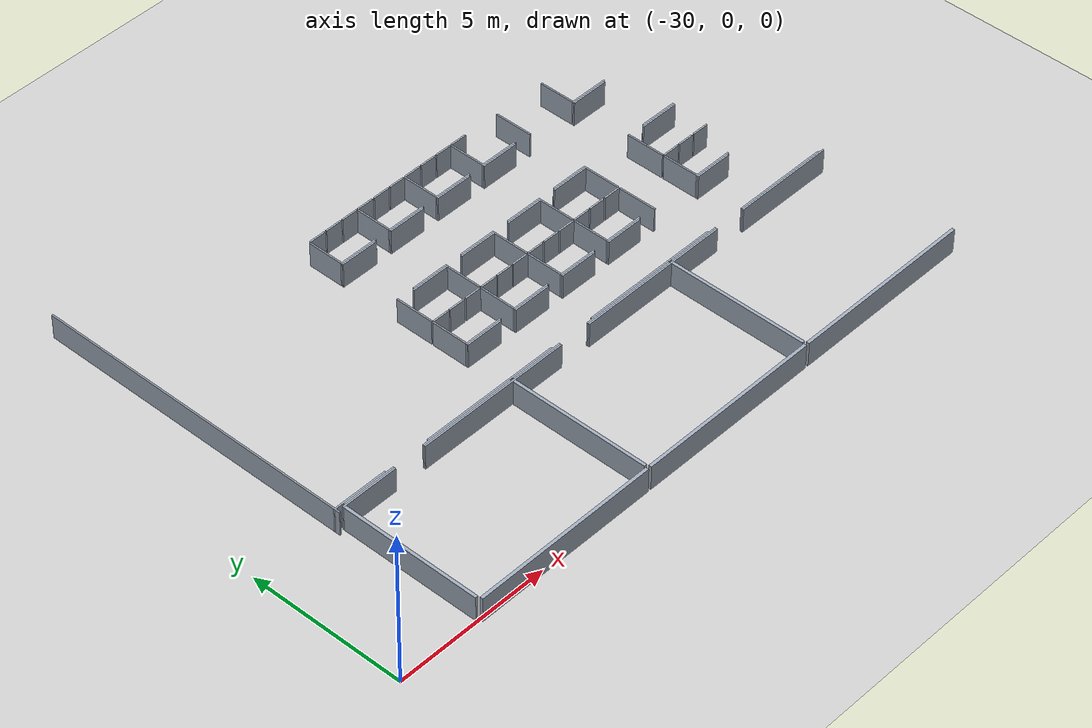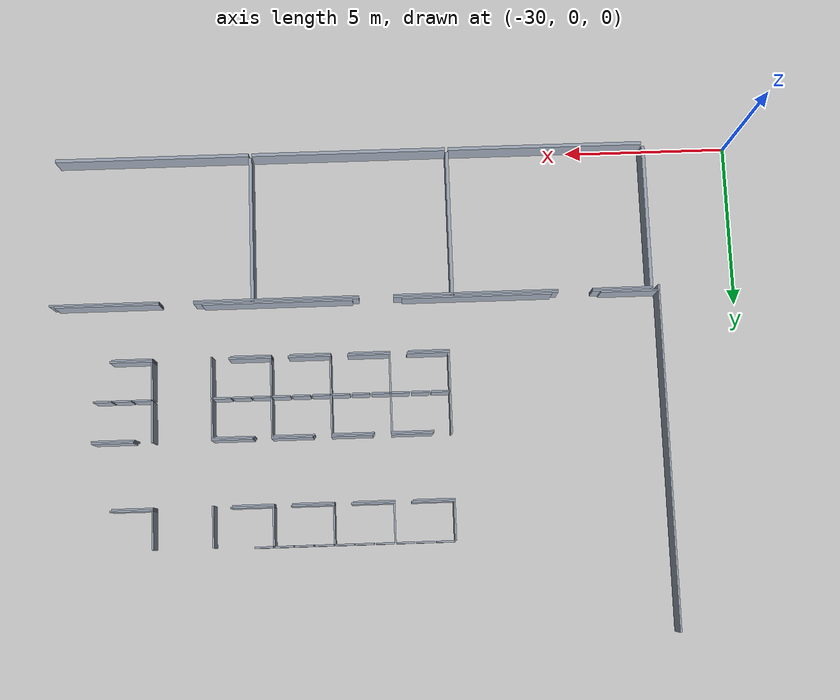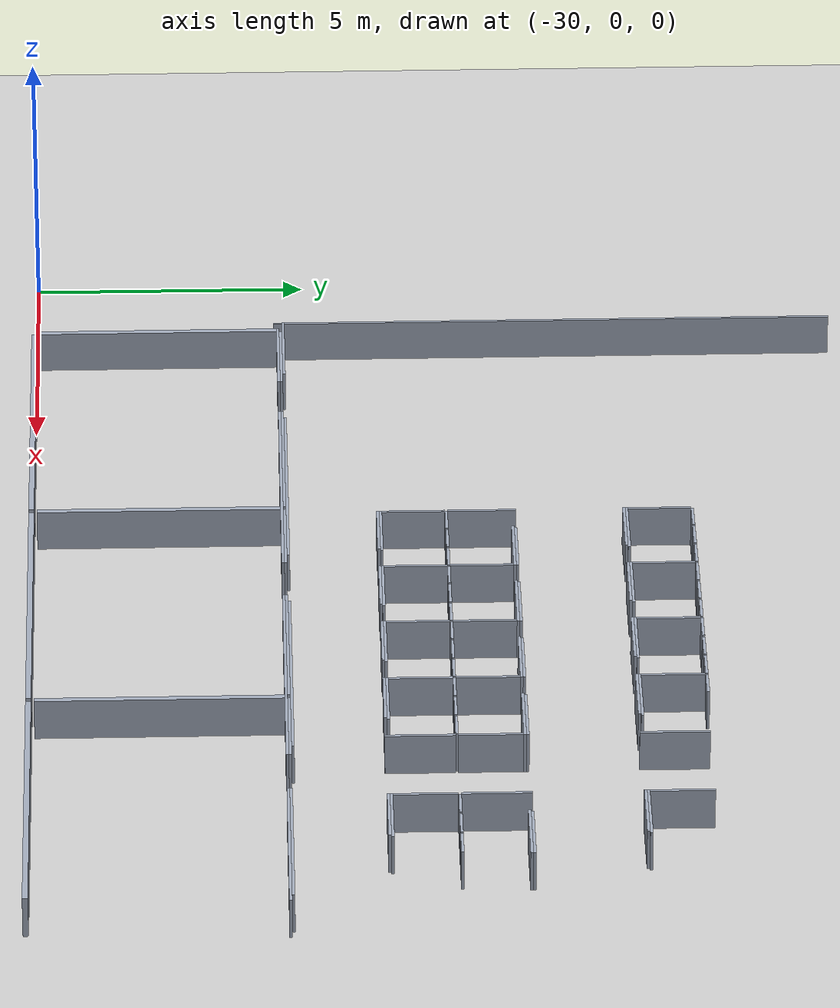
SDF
<sdf version="1.6">
 <world name="default">
  <include><uri>model://ground_plane</uri></include>
  <include><uri>model://sun</uri></include>
  <model name="slam_office_obstacles">
   <static>true</static>
   <link name="wall_175">
    <pose>-20.7250 12.0250 0.4 0 0 0</pose>
    <collision name="collision"><geometry><box><size>0.5500 0.0500 0.8</size></box></geometry></collision>
    <visual name="visual">
     <geometry><box><size>0.5500 0.0500 0.8</size></box></geometry>
     <material><ambient>0.62 0.66 0.72 1</ambient><diffuse>0.62 0.66 0.72 1</diffuse></material>
    </visual>
   </link>
   <link name="wall_176">
    <pose>-20.1250 12.0250 0.4 0 0 0</pose>
    <collision name="collision"><geometry><box><size>0.5500 0.0500 0.8</size></box></geometry></collision>
    <visual name="visual">
     <geometry><box><size>0.5500 0.0500 0.8</size></box></geometry>
     <material><ambient>0.62 0.66 0.72 1</ambient><diffuse>0.62 0.66 0.72 1</diffuse></material>
    </visual>
   </link>
   <link name="wall_177">
    <pose>-19.5250 12.0250 0.4 0 0 0</pose>
    <collision name="collision"><geometry><box><size>0.5500 0.0500 0.8</size></box></geometry></collision>
    <visual name="visual">
     <geometry><box><size>0.5500 0.0500 0.8</size></box></geometry>
     <material><ambient>0.62 0.66 0.72 1</ambient><diffuse>0.62 0.66 0.72 1</diffuse></material>
    </visual>
   </link>
   <link name="wall_178">
    <pose>-18.9250 12.0250 0.4 0 0 0</pose>
    <collision name="collision"><geometry><box><size>0.5500 0.0500 0.8</size></box></geometry></collision>
    <visual name="visual">
     <geometry><box><size>0.5500 0.0500 0.8</size></box></geometry>
     <material><ambient>0.62 0.66 0.72 1</ambient><diffuse>0.62 0.66 0.72 1</diffuse></material>
    </visual>
   </link>
   <link name="wall_179">
    <pose>-18.3250 12.0250 0.4 0 0 0</pose>
    <collision name="collision"><geometry><box><size>0.5500 0.0500 0.8</size></box></geometry></collision>
    <visual name="visual">
     <geometry><box><size>0.5500 0.0500 0.8</size></box></geometry>
     <material><ambient>0.62 0.66 0.72 1</ambient><diffuse>0.62 0.66 0.72 1</diffuse></material>
    </visual>
   </link>
   <link name="wall_180">
    <pose>-17.7250 12.0250 0.4 0 0 0</pose>
    <collision name="collision"><geometry><box><size>0.5500 0.0500 0.8</size></box></geometry></collision>
    <visual name="visual">
     <geometry><box><size>0.5500 0.0500 0.8</size></box></geometry>
     <material><ambient>0.62 0.66 0.72 1</ambient><diffuse>0.62 0.66 0.72 1</diffuse></material>
    </visual>
   </link>
   <link name="wall_181">
    <pose>-17.1250 12.0250 0.4 0 0 0</pose>
    <collision name="collision"><geometry><box><size>0.5500 0.0500 0.8</size></box></geometry></collision>
    <visual name="visual">
     <geometry><box><size>0.5500 0.0500 0.8</size></box></geometry>
     <material><ambient>0.62 0.66 0.72 1</ambient><diffuse>0.62 0.66 0.72 1</diffuse></material>
    </visual>
   </link>
   <link name="wall_182">
    <pose>-16.5250 12.0250 0.4 0 0 0</pose>
    <collision name="collision"><geometry><box><size>0.5500 0.0500 0.8</size></box></geometry></collision>
    <visual name="visual">
     <geometry><box><size>0.5500 0.0500 0.8</size></box></geometry>
     <material><ambient>0.62 0.66 0.72 1</ambient><diffuse>0.62 0.66 0.72 1</diffuse></material>
    </visual>
   </link>
   <link name="wall_183">
    <pose>-15.9250 12.0250 0.4 0 0 0</pose>
    <collision name="collision"><geometry><box><size>0.5500 0.0500 0.8</size></box></geometry></collision>
    <visual name="visual">
     <geometry><box><size>0.5500 0.0500 0.8</size></box></geometry>
     <material><ambient>0.62 0.66 0.72 1</ambient><diffuse>0.62 0.66 0.72 1</diffuse></material>
    </visual>
   </link>
   <link name="wall_184">
    <pose>-15.3250 12.0250 0.4 0 0 0</pose>
    <collision name="collision"><geometry><box><size>0.5500 0.0500 0.8</size></box></geometry></collision>
    <visual name="visual">
     <geometry><box><size>0.5500 0.0500 0.8</size></box></geometry>
     <material><ambient>0.62 0.66 0.72 1</ambient><diffuse>0.62 0.66 0.72 1</diffuse></material>
    </visual>
   </link>
   <link name="wall_207">
    <pose>-21.0250 11.4250 0.4 0 0 0</pose>
    <collision name="collision"><geometry><box><size>0.0500 1.1500 0.8</size></box></geometry></collision>
    <visual name="visual">
     <geometry><box><size>0.0500 1.1500 0.8</size></box></geometry>
     <material><ambient>0.62 0.66 0.72 1</ambient><diffuse>0.62 0.66 0.72 1</diffuse></material>
    </visual>
   </link>
   <link name="wall_208">
    <pose>-19.2250 11.4250 0.4 0 0 0</pose>
    <collision name="collision"><geometry><box><size>0.0500 1.1500 0.8</size></box></geometry></collision>
    <visual name="visual">
     <geometry><box><size>0.0500 1.1500 0.8</size></box></geometry>
     <material><ambient>0.62 0.66 0.72 1</ambient><diffuse>0.62 0.66 0.72 1</diffuse></material>
    </visual>
   </link>
   <link name="wall_209">
    <pose>-17.4250 11.4250 0.4 0 0 0</pose>
    <collision name="collision"><geometry><box><size>0.0500 1.1500 0.8</size></box></geometry></collision>
    <visual name="visual">
     <geometry><box><size>0.0500 1.1500 0.8</size></box></geometry>
     <material><ambient>0.62 0.66 0.72 1</ambient><diffuse>0.62 0.66 0.72 1</diffuse></material>
    </visual>
   </link>
   <link name="wall_210">
    <pose>-15.6250 11.4250 0.4 0 0 0</pose>
    <collision name="collision"><geometry><box><size>0.0500 1.1500 0.8</size></box></geometry></collision>
    <visual name="visual">
     <geometry><box><size>0.0500 1.1500 0.8</size></box></geometry>
     <material><ambient>0.62 0.66 0.72 1</ambient><diffuse>0.62 0.66 0.72 1</diffuse></material>
    </visual>
   </link>
   <link name="wall_211">
    <pose>-12.0250 11.4250 0.4 0 0 0</pose>
    <collision name="collision"><geometry><box><size>0.0500 1.1500 0.8</size></box></geometry></collision>
    <visual name="visual">
     <geometry><box><size>0.0500 1.1500 0.8</size></box></geometry>
     <material><ambient>0.62 0.66 0.72 1</ambient><diffuse>0.62 0.66 0.72 1</diffuse></material>
    </visual>
   </link>
   <link name="wall_214">
    <pose>-20.4000 10.8250 0.4 0 0 0</pose>
    <collision name="collision"><geometry><box><size>1.3000 0.0500 0.8</size></box></geometry></collision>
    <visual name="visual">
     <geometry><box><size>1.3000 0.0500 0.8</size></box></geometry>
     <material><ambient>0.62 0.66 0.72 1</ambient><diffuse>0.62 0.66 0.72 1</diffuse></material>
    </visual>
   </link>
   <link name="wall_215">
    <pose>-18.6000 10.8250 0.4 0 0 0</pose>
    <collision name="collision"><geometry><box><size>1.3000 0.0500 0.8</size></box></geometry></collision>
    <visual name="visual">
     <geometry><box><size>1.3000 0.0500 0.8</size></box></geometry>
     <material><ambient>0.62 0.66 0.72 1</ambient><diffuse>0.62 0.66 0.72 1</diffuse></material>
    </visual>
   </link>
   <link name="wall_216">
    <pose>-16.8000 10.8250 0.4 0 0 0</pose>
    <collision name="collision"><geometry><box><size>1.3000 0.0500 0.8</size></box></geometry></collision>
    <visual name="visual">
     <geometry><box><size>1.3000 0.0500 0.8</size></box></geometry>
     <material><ambient>0.62 0.66 0.72 1</ambient><diffuse>0.62 0.66 0.72 1</diffuse></material>
    </visual>
   </link>
   <link name="wall_217">
    <pose>-15.0000 10.8250 0.4 0 0 0</pose>
    <collision name="collision"><geometry><box><size>1.3000 0.0500 0.8</size></box></geometry></collision>
    <visual name="visual">
     <geometry><box><size>1.3000 0.0500 0.8</size></box></geometry>
     <material><ambient>0.62 0.66 0.72 1</ambient><diffuse>0.62 0.66 0.72 1</diffuse></material>
    </visual>
   </link>
   <link name="wall_218">
    <pose>-11.4000 10.8250 0.4 0 0 0</pose>
    <collision name="collision"><geometry><box><size>1.3000 0.0500 0.8</size></box></geometry></collision>
    <visual name="visual">
     <geometry><box><size>1.3000 0.0500 0.8</size></box></geometry>
     <material><ambient>0.62 0.66 0.72 1</ambient><diffuse>0.62 0.66 0.72 1</diffuse></material>
    </visual>
   </link>
   <link name="wall_221">
    <pose>-13.8250 11.3750 0.4 0 0 0</pose>
    <collision name="collision"><geometry><box><size>0.0500 1.2500 0.8</size></box></geometry></collision>
    <visual name="visual">
     <geometry><box><size>0.0500 1.2500 0.8</size></box></geometry>
     <material><ambient>0.62 0.66 0.72 1</ambient><diffuse>0.62 0.66 0.72 1</diffuse></material>
    </visual>
   </link>
   <link name="wall_223">
    <pose>-20.4250 10.7750 0.4 0 0 0</pose>
    <collision name="collision"><geometry><box><size>1.2500 0.0500 0.8</size></box></geometry></collision>
    <visual name="visual">
     <geometry><box><size>1.2500 0.0500 0.8</size></box></geometry>
     <material><ambient>0.62 0.66 0.72 1</ambient><diffuse>0.62 0.66 0.72 1</diffuse></material>
    </visual>
   </link>
   <link name="wall_224">
    <pose>-18.6250 10.7750 0.4 0 0 0</pose>
    <collision name="collision"><geometry><box><size>1.2500 0.0500 0.8</size></box></geometry></collision>
    <visual name="visual">
     <geometry><box><size>1.2500 0.0500 0.8</size></box></geometry>
     <material><ambient>0.62 0.66 0.72 1</ambient><diffuse>0.62 0.66 0.72 1</diffuse></material>
    </visual>
   </link>
   <link name="wall_225">
    <pose>-16.8250 10.7750 0.4 0 0 0</pose>
    <collision name="collision"><geometry><box><size>1.2500 0.0500 0.8</size></box></geometry></collision>
    <visual name="visual">
     <geometry><box><size>1.2500 0.0500 0.8</size></box></geometry>
     <material><ambient>0.62 0.66 0.72 1</ambient><diffuse>0.62 0.66 0.72 1</diffuse></material>
    </visual>
   </link>
   <link name="wall_226">
    <pose>-15.0250 10.7750 0.4 0 0 0</pose>
    <collision name="collision"><geometry><box><size>1.2500 0.0500 0.8</size></box></geometry></collision>
    <visual name="visual">
     <geometry><box><size>1.2500 0.0500 0.8</size></box></geometry>
     <material><ambient>0.62 0.66 0.72 1</ambient><diffuse>0.62 0.66 0.72 1</diffuse></material>
    </visual>
   </link>
   <link name="wall_227">
    <pose>-11.4250 10.7750 0.4 0 0 0</pose>
    <collision name="collision"><geometry><box><size>1.2500 0.0500 0.8</size></box></geometry></collision>
    <visual name="visual">
     <geometry><box><size>1.2500 0.0500 0.8</size></box></geometry>
     <material><ambient>0.62 0.66 0.72 1</ambient><diffuse>0.62 0.66 0.72 1</diffuse></material>
    </visual>
   </link>
   <link name="wall_243">
    <pose>-19.8250 8.7750 0.4 0 0 0</pose>
    <collision name="collision"><geometry><box><size>1.2500 0.0500 0.8</size></box></geometry></collision>
    <visual name="visual">
     <geometry><box><size>1.2500 0.0500 0.8</size></box></geometry>
     <material><ambient>0.62 0.66 0.72 1</ambient><diffuse>0.62 0.66 0.72 1</diffuse></material>
    </visual>
   </link>
   <link name="wall_244">
    <pose>-18.0250 8.7750 0.4 0 0 0</pose>
    <collision name="collision"><geometry><box><size>1.2500 0.0500 0.8</size></box></geometry></collision>
    <visual name="visual">
     <geometry><box><size>1.2500 0.0500 0.8</size></box></geometry>
     <material><ambient>0.62 0.66 0.72 1</ambient><diffuse>0.62 0.66 0.72 1</diffuse></material>
    </visual>
   </link>
   <link name="wall_245">
    <pose>-16.2250 8.7750 0.4 0 0 0</pose>
    <collision name="collision"><geometry><box><size>1.2500 0.0500 0.8</size></box></geometry></collision>
    <visual name="visual">
     <geometry><box><size>1.2500 0.0500 0.8</size></box></geometry>
     <material><ambient>0.62 0.66 0.72 1</ambient><diffuse>0.62 0.66 0.72 1</diffuse></material>
    </visual>
   </link>
   <link name="wall_246">
    <pose>-14.4250 8.7750 0.4 0 0 0</pose>
    <collision name="collision"><geometry><box><size>1.2500 0.0500 0.8</size></box></geometry></collision>
    <visual name="visual">
     <geometry><box><size>1.2500 0.0500 0.8</size></box></geometry>
     <material><ambient>0.62 0.66 0.72 1</ambient><diffuse>0.62 0.66 0.72 1</diffuse></material>
    </visual>
   </link>
   <link name="wall_247">
    <pose>-10.8250 8.7750 0.4 0 0 0</pose>
    <collision name="collision"><geometry><box><size>1.2500 0.0500 0.8</size></box></geometry></collision>
    <visual name="visual">
     <geometry><box><size>1.2500 0.0500 0.8</size></box></geometry>
     <material><ambient>0.62 0.66 0.72 1</ambient><diffuse>0.62 0.66 0.72 1</diffuse></material>
    </visual>
   </link>
   <link name="wall_250">
    <pose>-19.8500 8.7250 0.4 0 0 0</pose>
    <collision name="collision"><geometry><box><size>1.3000 0.0500 0.8</size></box></geometry></collision>
    <visual name="visual">
     <geometry><box><size>1.3000 0.0500 0.8</size></box></geometry>
     <material><ambient>0.62 0.66 0.72 1</ambient><diffuse>0.62 0.66 0.72 1</diffuse></material>
    </visual>
   </link>
   <link name="wall_251">
    <pose>-18.0500 8.7250 0.4 0 0 0</pose>
    <collision name="collision"><geometry><box><size>1.3000 0.0500 0.8</size></box></geometry></collision>
    <visual name="visual">
     <geometry><box><size>1.3000 0.0500 0.8</size></box></geometry>
     <material><ambient>0.62 0.66 0.72 1</ambient><diffuse>0.62 0.66 0.72 1</diffuse></material>
    </visual>
   </link>
   <link name="wall_252">
    <pose>-16.2500 8.7250 0.4 0 0 0</pose>
    <collision name="collision"><geometry><box><size>1.3000 0.0500 0.8</size></box></geometry></collision>
    <visual name="visual">
     <geometry><box><size>1.3000 0.0500 0.8</size></box></geometry>
     <material><ambient>0.62 0.66 0.72 1</ambient><diffuse>0.62 0.66 0.72 1</diffuse></material>
    </visual>
   </link>
   <link name="wall_253">
    <pose>-14.4500 8.7250 0.4 0 0 0</pose>
    <collision name="collision"><geometry><box><size>1.3000 0.0500 0.8</size></box></geometry></collision>
    <visual name="visual">
     <geometry><box><size>1.3000 0.0500 0.8</size></box></geometry>
     <material><ambient>0.62 0.66 0.72 1</ambient><diffuse>0.62 0.66 0.72 1</diffuse></material>
    </visual>
   </link>
   <link name="wall_254">
    <pose>-10.8500 8.7250 0.4 0 0 0</pose>
    <collision name="collision"><geometry><box><size>1.3000 0.0500 0.8</size></box></geometry></collision>
    <visual name="visual">
     <geometry><box><size>1.3000 0.0500 0.8</size></box></geometry>
     <material><ambient>0.62 0.66 0.72 1</ambient><diffuse>0.62 0.66 0.72 1</diffuse></material>
    </visual>
   </link>
   <link name="wall_259">
    <pose>-21.0250 8.1750 0.4 0 0 0</pose>
    <collision name="collision"><geometry><box><size>0.0500 1.2500 0.8</size></box></geometry></collision>
    <visual name="visual">
     <geometry><box><size>0.0500 1.2500 0.8</size></box></geometry>
     <material><ambient>0.62 0.66 0.72 1</ambient><diffuse>0.62 0.66 0.72 1</diffuse></material>
    </visual>
   </link>
   <link name="wall_260">
    <pose>-12.0250 8.1750 0.4 0 0 0</pose>
    <collision name="collision"><geometry><box><size>0.0500 1.2500 0.8</size></box></geometry></collision>
    <visual name="visual">
     <geometry><box><size>0.0500 1.2500 0.8</size></box></geometry>
     <material><ambient>0.62 0.66 0.72 1</ambient><diffuse>0.62 0.66 0.72 1</diffuse></material>
    </visual>
   </link>
   <link name="wall_261">
    <pose>-19.2250 8.1250 0.4 0 0 0</pose>
    <collision name="collision"><geometry><box><size>0.0500 1.1500 0.8</size></box></geometry></collision>
    <visual name="visual">
     <geometry><box><size>0.0500 1.1500 0.8</size></box></geometry>
     <material><ambient>0.62 0.66 0.72 1</ambient><diffuse>0.62 0.66 0.72 1</diffuse></material>
    </visual>
   </link>
   <link name="wall_262">
    <pose>-17.4250 8.1250 0.4 0 0 0</pose>
    <collision name="collision"><geometry><box><size>0.0500 1.1500 0.8</size></box></geometry></collision>
    <visual name="visual">
     <geometry><box><size>0.0500 1.1500 0.8</size></box></geometry>
     <material><ambient>0.62 0.66 0.72 1</ambient><diffuse>0.62 0.66 0.72 1</diffuse></material>
    </visual>
   </link>
   <link name="wall_263">
    <pose>-15.6250 8.1250 0.4 0 0 0</pose>
    <collision name="collision"><geometry><box><size>0.0500 1.1500 0.8</size></box></geometry></collision>
    <visual name="visual">
     <geometry><box><size>0.0500 1.1500 0.8</size></box></geometry>
     <material><ambient>0.62 0.66 0.72 1</ambient><diffuse>0.62 0.66 0.72 1</diffuse></material>
    </visual>
   </link>
   <link name="wall_264">
    <pose>-13.8250 8.1250 0.4 0 0 0</pose>
    <collision name="collision"><geometry><box><size>0.0500 1.1500 0.8</size></box></geometry></collision>
    <visual name="visual">
     <geometry><box><size>0.0500 1.1500 0.8</size></box></geometry>
     <material><ambient>0.62 0.66 0.72 1</ambient><diffuse>0.62 0.66 0.72 1</diffuse></material>
    </visual>
   </link>
   <link name="wall_270">
    <pose>-20.7250 7.5250 0.4 0 0 0</pose>
    <collision name="collision"><geometry><box><size>0.5500 0.0500 0.8</size></box></geometry></collision>
    <visual name="visual">
     <geometry><box><size>0.5500 0.0500 0.8</size></box></geometry>
     <material><ambient>0.62 0.66 0.72 1</ambient><diffuse>0.62 0.66 0.72 1</diffuse></material>
    </visual>
   </link>
   <link name="wall_271">
    <pose>-20.1250 7.5250 0.4 0 0 0</pose>
    <collision name="collision"><geometry><box><size>0.5500 0.0500 0.8</size></box></geometry></collision>
    <visual name="visual">
     <geometry><box><size>0.5500 0.0500 0.8</size></box></geometry>
     <material><ambient>0.62 0.66 0.72 1</ambient><diffuse>0.62 0.66 0.72 1</diffuse></material>
    </visual>
   </link>
   <link name="wall_272">
    <pose>-19.5250 7.5250 0.4 0 0 0</pose>
    <collision name="collision"><geometry><box><size>0.5500 0.0500 0.8</size></box></geometry></collision>
    <visual name="visual">
     <geometry><box><size>0.5500 0.0500 0.8</size></box></geometry>
     <material><ambient>0.62 0.66 0.72 1</ambient><diffuse>0.62 0.66 0.72 1</diffuse></material>
    </visual>
   </link>
   <link name="wall_273">
    <pose>-18.9250 7.5250 0.4 0 0 0</pose>
    <collision name="collision"><geometry><box><size>0.5500 0.0500 0.8</size></box></geometry></collision>
    <visual name="visual">
     <geometry><box><size>0.5500 0.0500 0.8</size></box></geometry>
     <material><ambient>0.62 0.66 0.72 1</ambient><diffuse>0.62 0.66 0.72 1</diffuse></material>
    </visual>
   </link>
   <link name="wall_274">
    <pose>-18.3250 7.5250 0.4 0 0 0</pose>
    <collision name="collision"><geometry><box><size>0.5500 0.0500 0.8</size></box></geometry></collision>
    <visual name="visual">
     <geometry><box><size>0.5500 0.0500 0.8</size></box></geometry>
     <material><ambient>0.62 0.66 0.72 1</ambient><diffuse>0.62 0.66 0.72 1</diffuse></material>
    </visual>
   </link>
   <link name="wall_275">
    <pose>-17.7250 7.5250 0.4 0 0 0</pose>
    <collision name="collision"><geometry><box><size>0.5500 0.0500 0.8</size></box></geometry></collision>
    <visual name="visual">
     <geometry><box><size>0.5500 0.0500 0.8</size></box></geometry>
     <material><ambient>0.62 0.66 0.72 1</ambient><diffuse>0.62 0.66 0.72 1</diffuse></material>
    </visual>
   </link>
   <link name="wall_276">
    <pose>-17.1250 7.5250 0.4 0 0 0</pose>
    <collision name="collision"><geometry><box><size>0.5500 0.0500 0.8</size></box></geometry></collision>
    <visual name="visual">
     <geometry><box><size>0.5500 0.0500 0.8</size></box></geometry>
     <material><ambient>0.62 0.66 0.72 1</ambient><diffuse>0.62 0.66 0.72 1</diffuse></material>
    </visual>
   </link>
   <link name="wall_277">
    <pose>-16.5250 7.5250 0.4 0 0 0</pose>
    <collision name="collision"><geometry><box><size>0.5500 0.0500 0.8</size></box></geometry></collision>
    <visual name="visual">
     <geometry><box><size>0.5500 0.0500 0.8</size></box></geometry>
     <material><ambient>0.62 0.66 0.72 1</ambient><diffuse>0.62 0.66 0.72 1</diffuse></material>
    </visual>
   </link>
   <link name="wall_278">
    <pose>-15.9250 7.5250 0.4 0 0 0</pose>
    <collision name="collision"><geometry><box><size>0.5500 0.0500 0.8</size></box></geometry></collision>
    <visual name="visual">
     <geometry><box><size>0.5500 0.0500 0.8</size></box></geometry>
     <material><ambient>0.62 0.66 0.72 1</ambient><diffuse>0.62 0.66 0.72 1</diffuse></material>
    </visual>
   </link>
   <link name="wall_279">
    <pose>-15.3250 7.5250 0.4 0 0 0</pose>
    <collision name="collision"><geometry><box><size>0.5500 0.0500 0.8</size></box></geometry></collision>
    <visual name="visual">
     <geometry><box><size>0.5500 0.0500 0.8</size></box></geometry>
     <material><ambient>0.62 0.66 0.72 1</ambient><diffuse>0.62 0.66 0.72 1</diffuse></material>
    </visual>
   </link>
   <link name="wall_280">
    <pose>-14.7250 7.5250 0.4 0 0 0</pose>
    <collision name="collision"><geometry><box><size>0.5500 0.0500 0.8</size></box></geometry></collision>
    <visual name="visual">
     <geometry><box><size>0.5500 0.0500 0.8</size></box></geometry>
     <material><ambient>0.62 0.66 0.72 1</ambient><diffuse>0.62 0.66 0.72 1</diffuse></material>
    </visual>
   </link>
   <link name="wall_281">
    <pose>-14.1250 7.5250 0.4 0 0 0</pose>
    <collision name="collision"><geometry><box><size>0.5500 0.0500 0.8</size></box></geometry></collision>
    <visual name="visual">
     <geometry><box><size>0.5500 0.0500 0.8</size></box></geometry>
     <material><ambient>0.62 0.66 0.72 1</ambient><diffuse>0.62 0.66 0.72 1</diffuse></material>
    </visual>
   </link>
   <link name="wall_282">
    <pose>-11.7250 7.5250 0.4 0 0 0</pose>
    <collision name="collision"><geometry><box><size>0.5500 0.0500 0.8</size></box></geometry></collision>
    <visual name="visual">
     <geometry><box><size>0.5500 0.0500 0.8</size></box></geometry>
     <material><ambient>0.62 0.66 0.72 1</ambient><diffuse>0.62 0.66 0.72 1</diffuse></material>
    </visual>
   </link>
   <link name="wall_283">
    <pose>-11.1250 7.5250 0.4 0 0 0</pose>
    <collision name="collision"><geometry><box><size>0.5500 0.0500 0.8</size></box></geometry></collision>
    <visual name="visual">
     <geometry><box><size>0.5500 0.0500 0.8</size></box></geometry>
     <material><ambient>0.62 0.66 0.72 1</ambient><diffuse>0.62 0.66 0.72 1</diffuse></material>
    </visual>
   </link>
   <link name="wall_284">
    <pose>-10.5250 7.5250 0.4 0 0 0</pose>
    <collision name="collision"><geometry><box><size>0.5500 0.0500 0.8</size></box></geometry></collision>
    <visual name="visual">
     <geometry><box><size>0.5500 0.0500 0.8</size></box></geometry>
     <material><ambient>0.62 0.66 0.72 1</ambient><diffuse>0.62 0.66 0.72 1</diffuse></material>
    </visual>
   </link>
   <link name="wall_295">
    <pose>-21.0250 6.9250 0.4 0 0 0</pose>
    <collision name="collision"><geometry><box><size>0.0500 1.1500 0.8</size></box></geometry></collision>
    <visual name="visual">
     <geometry><box><size>0.0500 1.1500 0.8</size></box></geometry>
     <material><ambient>0.62 0.66 0.72 1</ambient><diffuse>0.62 0.66 0.72 1</diffuse></material>
    </visual>
   </link>
   <link name="wall_296">
    <pose>-19.2250 6.9250 0.4 0 0 0</pose>
    <collision name="collision"><geometry><box><size>0.0500 1.1500 0.8</size></box></geometry></collision>
    <visual name="visual">
     <geometry><box><size>0.0500 1.1500 0.8</size></box></geometry>
     <material><ambient>0.62 0.66 0.72 1</ambient><diffuse>0.62 0.66 0.72 1</diffuse></material>
    </visual>
   </link>
   <link name="wall_297">
    <pose>-17.4250 6.9250 0.4 0 0 0</pose>
    <collision name="collision"><geometry><box><size>0.0500 1.1500 0.8</size></box></geometry></collision>
    <visual name="visual">
     <geometry><box><size>0.0500 1.1500 0.8</size></box></geometry>
     <material><ambient>0.62 0.66 0.72 1</ambient><diffuse>0.62 0.66 0.72 1</diffuse></material>
    </visual>
   </link>
   <link name="wall_298">
    <pose>-15.6250 6.9250 0.4 0 0 0</pose>
    <collision name="collision"><geometry><box><size>0.0500 1.1500 0.8</size></box></geometry></collision>
    <visual name="visual">
     <geometry><box><size>0.0500 1.1500 0.8</size></box></geometry>
     <material><ambient>0.62 0.66 0.72 1</ambient><diffuse>0.62 0.66 0.72 1</diffuse></material>
    </visual>
   </link>
   <link name="wall_299">
    <pose>-12.0250 6.9250 0.4 0 0 0</pose>
    <collision name="collision"><geometry><box><size>0.0500 1.1500 0.8</size></box></geometry></collision>
    <visual name="visual">
     <geometry><box><size>0.0500 1.1500 0.8</size></box></geometry>
     <material><ambient>0.62 0.66 0.72 1</ambient><diffuse>0.62 0.66 0.72 1</diffuse></material>
    </visual>
   </link>
   <link name="wall_302">
    <pose>-20.4000 6.3250 0.4 0 0 0</pose>
    <collision name="collision"><geometry><box><size>1.3000 0.0500 0.8</size></box></geometry></collision>
    <visual name="visual">
     <geometry><box><size>1.3000 0.0500 0.8</size></box></geometry>
     <material><ambient>0.62 0.66 0.72 1</ambient><diffuse>0.62 0.66 0.72 1</diffuse></material>
    </visual>
   </link>
   <link name="wall_303">
    <pose>-18.6000 6.3250 0.4 0 0 0</pose>
    <collision name="collision"><geometry><box><size>1.3000 0.0500 0.8</size></box></geometry></collision>
    <visual name="visual">
     <geometry><box><size>1.3000 0.0500 0.8</size></box></geometry>
     <material><ambient>0.62 0.66 0.72 1</ambient><diffuse>0.62 0.66 0.72 1</diffuse></material>
    </visual>
   </link>
   <link name="wall_304">
    <pose>-16.8000 6.3250 0.4 0 0 0</pose>
    <collision name="collision"><geometry><box><size>1.3000 0.0500 0.8</size></box></geometry></collision>
    <visual name="visual">
     <geometry><box><size>1.3000 0.0500 0.8</size></box></geometry>
     <material><ambient>0.62 0.66 0.72 1</ambient><diffuse>0.62 0.66 0.72 1</diffuse></material>
    </visual>
   </link>
   <link name="wall_305">
    <pose>-15.0000 6.3250 0.4 0 0 0</pose>
    <collision name="collision"><geometry><box><size>1.3000 0.0500 0.8</size></box></geometry></collision>
    <visual name="visual">
     <geometry><box><size>1.3000 0.0500 0.8</size></box></geometry>
     <material><ambient>0.62 0.66 0.72 1</ambient><diffuse>0.62 0.66 0.72 1</diffuse></material>
    </visual>
   </link>
   <link name="wall_306">
    <pose>-11.4000 6.3250 0.4 0 0 0</pose>
    <collision name="collision"><geometry><box><size>1.3000 0.0500 0.8</size></box></geometry></collision>
    <visual name="visual">
     <geometry><box><size>1.3000 0.0500 0.8</size></box></geometry>
     <material><ambient>0.62 0.66 0.72 1</ambient><diffuse>0.62 0.66 0.72 1</diffuse></material>
    </visual>
   </link>
   <link name="wall_309">
    <pose>-13.8250 6.8750 0.4 0 0 0</pose>
    <collision name="collision"><geometry><box><size>0.0500 1.2500 0.8</size></box></geometry></collision>
    <visual name="visual">
     <geometry><box><size>0.0500 1.2500 0.8</size></box></geometry>
     <material><ambient>0.62 0.66 0.72 1</ambient><diffuse>0.62 0.66 0.72 1</diffuse></material>
    </visual>
   </link>
   <link name="wall_311">
    <pose>-20.4250 6.2750 0.4 0 0 0</pose>
    <collision name="collision"><geometry><box><size>1.2500 0.0500 0.8</size></box></geometry></collision>
    <visual name="visual">
     <geometry><box><size>1.2500 0.0500 0.8</size></box></geometry>
     <material><ambient>0.62 0.66 0.72 1</ambient><diffuse>0.62 0.66 0.72 1</diffuse></material>
    </visual>
   </link>
   <link name="wall_312">
    <pose>-18.6250 6.2750 0.4 0 0 0</pose>
    <collision name="collision"><geometry><box><size>1.2500 0.0500 0.8</size></box></geometry></collision>
    <visual name="visual">
     <geometry><box><size>1.2500 0.0500 0.8</size></box></geometry>
     <material><ambient>0.62 0.66 0.72 1</ambient><diffuse>0.62 0.66 0.72 1</diffuse></material>
    </visual>
   </link>
   <link name="wall_313">
    <pose>-16.8250 6.2750 0.4 0 0 0</pose>
    <collision name="collision"><geometry><box><size>1.2500 0.0500 0.8</size></box></geometry></collision>
    <visual name="visual">
     <geometry><box><size>1.2500 0.0500 0.8</size></box></geometry>
     <material><ambient>0.62 0.66 0.72 1</ambient><diffuse>0.62 0.66 0.72 1</diffuse></material>
    </visual>
   </link>
   <link name="wall_314">
    <pose>-15.0250 6.2750 0.4 0 0 0</pose>
    <collision name="collision"><geometry><box><size>1.2500 0.0500 0.8</size></box></geometry></collision>
    <visual name="visual">
     <geometry><box><size>1.2500 0.0500 0.8</size></box></geometry>
     <material><ambient>0.62 0.66 0.72 1</ambient><diffuse>0.62 0.66 0.72 1</diffuse></material>
    </visual>
   </link>
   <link name="wall_315">
    <pose>-11.4250 6.2750 0.4 0 0 0</pose>
    <collision name="collision"><geometry><box><size>1.2500 0.0500 0.8</size></box></geometry></collision>
    <visual name="visual">
     <geometry><box><size>1.2500 0.0500 0.8</size></box></geometry>
     <material><ambient>0.62 0.66 0.72 1</ambient><diffuse>0.62 0.66 0.72 1</diffuse></material>
    </visual>
   </link>
   <link name="wall_321">
    <pose>-27.5250 9.7750 0.4 0 0 0</pose>
    <collision name="collision"><geometry><box><size>0.0500 10.2500 0.8</size></box></geometry></collision>
    <visual name="visual">
     <geometry><box><size>0.0500 10.2500 0.8</size></box></geometry>
     <material><ambient>0.62 0.66 0.72 1</ambient><diffuse>0.62 0.66 0.72 1</diffuse></material>
    </visual>
   </link>
   <link name="wall_322">
    <pose>-26.6500 4.6250 0.4 0 0 0</pose>
    <collision name="collision"><geometry><box><size>1.8000 0.0500 0.8</size></box></geometry></collision>
    <visual name="visual">
     <geometry><box><size>1.8000 0.0500 0.8</size></box></geometry>
     <material><ambient>0.62 0.66 0.72 1</ambient><diffuse>0.62 0.66 0.72 1</diffuse></material>
    </visual>
   </link>
   <link name="wall_323">
    <pose>-21.9500 4.6250 0.4 0 0 0</pose>
    <collision name="collision"><geometry><box><size>4.6000 0.0500 0.8</size></box></geometry></collision>
    <visual name="visual">
     <geometry><box><size>4.6000 0.0500 0.8</size></box></geometry>
     <material><ambient>0.62 0.66 0.72 1</ambient><diffuse>0.62 0.66 0.72 1</diffuse></material>
    </visual>
   </link>
   <link name="wall_324">
    <pose>-15.8500 4.6250 0.4 0 0 0</pose>
    <collision name="collision"><geometry><box><size>4.6000 0.0500 0.8</size></box></geometry></collision>
    <visual name="visual">
     <geometry><box><size>4.6000 0.0500 0.8</size></box></geometry>
     <material><ambient>0.62 0.66 0.72 1</ambient><diffuse>0.62 0.66 0.72 1</diffuse></material>
    </visual>
   </link>
   <link name="wall_328">
    <pose>-26.3750 4.5750 0.4 0 0 0</pose>
    <collision name="collision"><geometry><box><size>1.7500 0.0500 0.8</size></box></geometry></collision>
    <visual name="visual">
     <geometry><box><size>1.7500 0.0500 0.8</size></box></geometry>
     <material><ambient>0.62 0.66 0.72 1</ambient><diffuse>0.62 0.66 0.72 1</diffuse></material>
    </visual>
   </link>
   <link name="wall_329">
    <pose>-22.8500 4.5750 0.4 0 0 0</pose>
    <collision name="collision"><geometry><box><size>3.2000 0.0500 0.8</size></box></geometry></collision>
    <visual name="visual">
     <geometry><box><size>3.2000 0.0500 0.8</size></box></geometry>
     <material><ambient>0.62 0.66 0.72 1</ambient><diffuse>0.62 0.66 0.72 1</diffuse></material>
    </visual>
   </link>
   <link name="wall_330">
    <pose>-20.2750 4.5750 0.4 0 0 0</pose>
    <collision name="collision"><geometry><box><size>1.7500 0.0500 0.8</size></box></geometry></collision>
    <visual name="visual">
     <geometry><box><size>1.7500 0.0500 0.8</size></box></geometry>
     <material><ambient>0.62 0.66 0.72 1</ambient><diffuse>0.62 0.66 0.72 1</diffuse></material>
    </visual>
   </link>
   <link name="wall_331">
    <pose>-16.7500 4.5750 0.4 0 0 0</pose>
    <collision name="collision"><geometry><box><size>3.2000 0.0500 0.8</size></box></geometry></collision>
    <visual name="visual">
     <geometry><box><size>3.2000 0.0500 0.8</size></box></geometry>
     <material><ambient>0.62 0.66 0.72 1</ambient><diffuse>0.62 0.66 0.72 1</diffuse></material>
    </visual>
   </link>
   <link name="wall_332">
    <pose>-14.1750 4.5750 0.4 0 0 0</pose>
    <collision name="collision"><geometry><box><size>1.7500 0.0500 0.8</size></box></geometry></collision>
    <visual name="visual">
     <geometry><box><size>1.7500 0.0500 0.8</size></box></geometry>
     <material><ambient>0.62 0.66 0.72 1</ambient><diffuse>0.62 0.66 0.72 1</diffuse></material>
    </visual>
   </link>
   <link name="wall_333">
    <pose>-10.6500 4.5750 0.4 0 0 0</pose>
    <collision name="collision"><geometry><box><size>3.2000 0.0500 0.8</size></box></geometry></collision>
    <visual name="visual">
     <geometry><box><size>3.2000 0.0500 0.8</size></box></geometry>
     <material><ambient>0.62 0.66 0.72 1</ambient><diffuse>0.62 0.66 0.72 1</diffuse></material>
    </visual>
   </link>
   <link name="wall_336">
    <pose>-26.4250 4.5250 0.4 0 0 0</pose>
    <collision name="collision"><geometry><box><size>1.8500 0.0500 0.8</size></box></geometry></collision>
    <visual name="visual">
     <geometry><box><size>1.8500 0.0500 0.8</size></box></geometry>
     <material><ambient>0.62 0.66 0.72 1</ambient><diffuse>0.62 0.66 0.72 1</diffuse></material>
    </visual>
   </link>
   <link name="wall_337">
    <pose>-21.9250 4.5250 0.4 0 0 0</pose>
    <collision name="collision"><geometry><box><size>5.0500 0.0500 0.8</size></box></geometry></collision>
    <visual name="visual">
     <geometry><box><size>5.0500 0.0500 0.8</size></box></geometry>
     <material><ambient>0.62 0.66 0.72 1</ambient><diffuse>0.62 0.66 0.72 1</diffuse></material>
    </visual>
   </link>
   <link name="wall_338">
    <pose>-15.8250 4.5250 0.4 0 0 0</pose>
    <collision name="collision"><geometry><box><size>5.0500 0.0500 0.8</size></box></geometry></collision>
    <visual name="visual">
     <geometry><box><size>5.0500 0.0500 0.8</size></box></geometry>
     <material><ambient>0.62 0.66 0.72 1</ambient><diffuse>0.62 0.66 0.72 1</diffuse></material>
    </visual>
   </link>
   <link name="wall_339">
    <pose>-10.5750 4.5250 0.4 0 0 0</pose>
    <collision name="collision"><geometry><box><size>3.3500 0.0500 0.8</size></box></geometry></collision>
    <visual name="visual">
     <geometry><box><size>3.3500 0.0500 0.8</size></box></geometry>
     <material><ambient>0.62 0.66 0.72 1</ambient><diffuse>0.62 0.66 0.72 1</diffuse></material>
    </visual>
   </link>
   <link name="wall_342">
    <pose>-27.5250 4.5250 0.4 0 0 0</pose>
    <collision name="collision"><geometry><box><size>0.0500 0.1500 0.8</size></box></geometry></collision>
    <visual name="visual">
     <geometry><box><size>0.0500 0.1500 0.8</size></box></geometry>
     <material><ambient>0.62 0.66 0.72 1</ambient><diffuse>0.62 0.66 0.72 1</diffuse></material>
    </visual>
   </link>
   <link name="wall_359">
    <pose>-27.3000 2.2750 0.4 0 0 0</pose>
    <collision name="collision"><geometry><box><size>0.1000 4.4500 0.8</size></box></geometry></collision>
    <visual name="visual">
     <geometry><box><size>0.1000 4.4500 0.8</size></box></geometry>
     <material><ambient>0.62 0.66 0.72 1</ambient><diffuse>0.62 0.66 0.72 1</diffuse></material>
    </visual>
   </link>
   <link name="wall_360">
    <pose>-21.2000 2.2750 0.4 0 0 0</pose>
    <collision name="collision"><geometry><box><size>0.1000 4.4500 0.8</size></box></geometry></collision>
    <visual name="visual">
     <geometry><box><size>0.1000 4.4500 0.8</size></box></geometry>
     <material><ambient>0.62 0.66 0.72 1</ambient><diffuse>0.62 0.66 0.72 1</diffuse></material>
    </visual>
   </link>
   <link name="wall_361">
    <pose>-15.1000 2.2750 0.4 0 0 0</pose>
    <collision name="collision"><geometry><box><size>0.1000 4.4500 0.8</size></box></geometry></collision>
    <visual name="visual">
     <geometry><box><size>0.1000 4.4500 0.8</size></box></geometry>
     <material><ambient>0.62 0.66 0.72 1</ambient><diffuse>0.62 0.66 0.72 1</diffuse></material>
    </visual>
   </link>
   <link name="wall_368">
    <pose>-24.2500 -0.0500 0.4 0 0 0</pose>
    <collision name="collision"><geometry><box><size>6.0000 0.1000 0.8</size></box></geometry></collision>
    <visual name="visual">
     <geometry><box><size>6.0000 0.1000 0.8</size></box></geometry>
     <material><ambient>0.62 0.66 0.72 1</ambient><diffuse>0.62 0.66 0.72 1</diffuse></material>
    </visual>
   </link>
   <link name="wall_369">
    <pose>-18.1500 -0.0500 0.4 0 0 0</pose>
    <collision name="collision"><geometry><box><size>6.0000 0.1000 0.8</size></box></geometry></collision>
    <visual name="visual">
     <geometry><box><size>6.0000 0.1000 0.8</size></box></geometry>
     <material><ambient>0.62 0.66 0.72 1</ambient><diffuse>0.62 0.66 0.72 1</diffuse></material>
    </visual>
   </link>
   <link name="wall_370">
    <pose>-12.0500 -0.0500 0.4 0 0 0</pose>
    <collision name="collision"><geometry><box><size>6.0000 0.1000 0.8</size></box></geometry></collision>
    <visual name="visual">
     <geometry><box><size>6.0000 0.1000 0.8</size></box></geometry>
     <material><ambient>0.62 0.66 0.72 1</ambient><diffuse>0.62 0.66 0.72 1</diffuse></material>
    </visual>
   </link>
  </model>
 </world>
</sdf>
